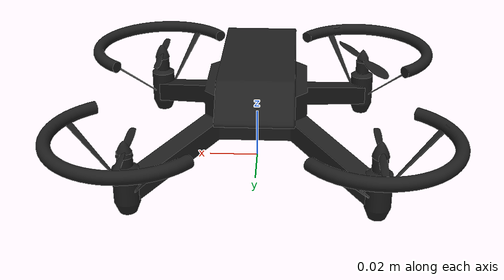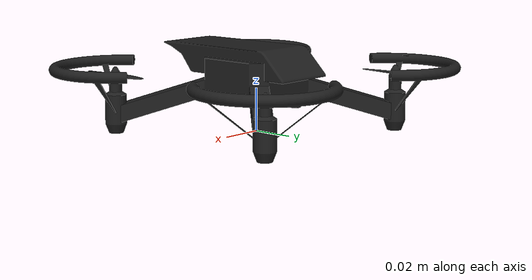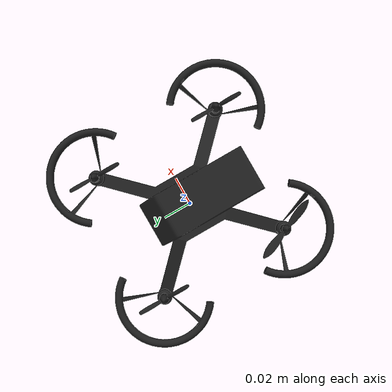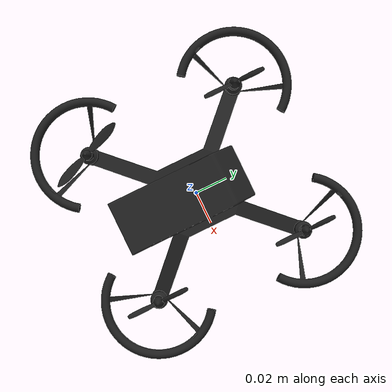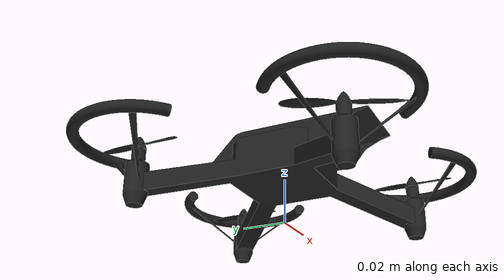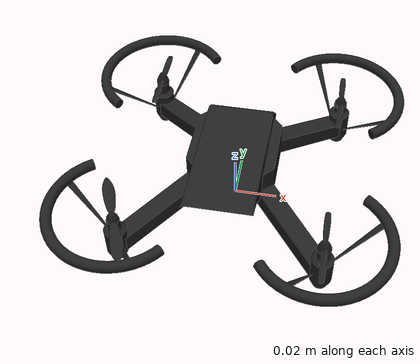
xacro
<?xml version="1.0"?>
<robot xmlns:xacro="http://www.ros.org/wiki/xacro" name="Kwad">
	<xacro:property name="width" value="0.0315" />
	<xacro:property name="length" value="0.45" />
	<xacro:property name="height" value="0.01" />
	<xacro:property name="mass_fr" value="0.5" />
	<xacro:property name="mass_pr" value="0.00055" />
	<xacro:property name="pi_value" value="3.14159263" />
	<xacro:property name="radiusp" value="0.20" />
	<xacro:property name="prop_loc" value="0.15909" />
    <xacro:include filename="$(find lqr)/urdf/material.xacro" />
	<xacro:include filename="$(find lqr)/urdf/pluto.gazebo" />
	<!-- Define inertial macro -->
	<xacro:macro name="default_inertial" params="mass p ix_value iy_value iz_value" >
		<inertial>
			<origin xyz="0 0 0" rpy="0 0 ${p}" />
			<mass value="${mass}" />
			<inertia ixx="${ix_value}" ixy="0" ixz="0"
					 iyy="${iy_value}" iyz="0" izz="${iz_value}" />
		</inertial>
	</xacro:macro>
    <link name="body">
        <visual>
            <origin xyz="0 0 0" rpy="0 0 0" />
            <geometry>
                <mesh filename="package://lqr/meshes/body.dae" scale="0.01 0.01 0.01" />
            </geometry>

            <material name="black" />
        </visual>

        <collision>
            <origin xyz="0 0 0" rpy="0 0 0" />
            <geometry>
                <box size="0.01 0.01 0.0015" />
            </geometry>
        </collision>
        <xacro:default_inertial mass="${0.054}" p="${0}" ix_value="${5.05125e-7}" iy_value="${5.05125e-7}" iz_value="${9e-7}" />
    </link>
    <link name="cap">
        <visual>
            <origin xyz="0 -0.008 0" rpy="0 0 0" />
            <geometry>
                <mesh filename="package://lqr/meshes/cap.dae" scale="0.0088 0.0088 0.0088" />
            </geometry>

            <material name="black" />
        </visual>

        <collision>
            <origin xyz="0 -0.008 0" rpy="0 0 0" />
            <geometry>
                <box size="0.008 0.0035 0.001" />
            </geometry>
        </collision>
        <xacro:default_inertial mass="${0.01}" p="${0}" ix_value="${1.104e-8}" iy_value="${5.4167e-8}" iz_value="${6.354167e-8}" />
    </link>
    <link name="motor1">
        <visual>
            <origin xyz="0 0 0" rpy="0 0 0" />
            <geometry>
                <mesh filename="package://lqr/meshes/motors.dae" scale="0.01 0.01 0.01" />
            </geometry>

            <material name="black" />
        </visual>

        <collision>
            <origin xyz="0 0 0" rpy="0 0 0" />
            <geometry>
                <box size="0.0007 0.0007 0.0025" />
            </geometry>
        </collision>
        <xacro:default_inertial mass="${0.01}" p="${0}" ix_value="${5.5145e-7}" iy_value="${5.5145e-7}" iz_value="${6.125e-10}" />
    </link>
    <link name="motor2">
        <visual>
            <origin xyz="0 0 0" rpy="0 0 0" />
            <geometry>
                <mesh filename="package://lqr/meshes/motors.dae" scale="0.01 0.01 0.01" />
            </geometry>

            <material name="black" />
        </visual>

        <collision>
            <origin xyz="0 0 0" rpy="0 0 0" />
            <geometry>
                <box size="0.0007 0.0007 0.0025" />
            </geometry>
        </collision>
        <xacro:default_inertial mass="${0.01}" p="${0}" ix_value="${5.5145e-7}" iy_value="${5.5145e-7}" iz_value="${6.125e-10}" />
    </link>
    <link name="motor3">
        <visual>
            <origin xyz="0 0 0" rpy="0 0 0" />
            <geometry>
                <mesh filename="package://lqr/meshes/motors.dae" scale="0.01 0.01 0.01" />
            </geometry>

            <material name="black" />
        </visual>

        <collision>
            <origin xyz="0 0 0" rpy="0 0 0" />
            <geometry>
                <box size="0.0007 0.0007 0.0025" />
            </geometry>
        </collision>
        <xacro:default_inertial mass="${0.01}" p="${0}" ix_value="${5.5145e-7}" iy_value="${5.5145e-7}" iz_value="${6.125e-10}" />
    </link>
    <link name="motor4">
        <visual>
            <origin xyz="0 0 0" rpy="0 0 0" />
            <geometry>
                <mesh filename="package://lqr/meshes/motors.dae" scale="0.01 0.01 0.01" />
            </geometry>

            <material name="black" />
        </visual>

        <collision>
            <origin xyz="0 0 0" rpy="0 0 0" />
            <geometry>
                <box size="0.0007 0.0007 0.0025" />
            </geometry>
        </collision>
        <xacro:default_inertial mass="${0.01}" p="${0}" ix_value="${5.5145e-7}" iy_value="${5.5145e-7}" iz_value="${6.125e-10}" />
    </link>
    <link name="prop1">
        <visual>
            <origin xyz="0 0 0.025" rpy="0 0 0" />
            <geometry>
                <mesh filename="package://lqr/meshes/prop1.dae" scale="0.02 0.02 0.02" />
            </geometry>

            <material name="black" />
        </visual>

        <collision>
            <origin xyz="0 0 0.025" rpy="0 0 0" />
            <geometry>
                <box size="0.00055 0.00008 0.00001" />
            </geometry>
        </collision>
        <xacro:default_inertial mass="${0.05}" p="${0}" ix_value="${2.7e-7}" iy_value="${1.26e-5}" iz_value="${1.285e-5}" />
    </link>
    <link name="prop2">
        <visual>
            <origin xyz="0 0 0.025" rpy="0 0 0" />
            <geometry>
                <mesh filename="package://lqr/meshes/prop.dae" scale="0.02 0.02 0.02" />
            </geometry>

            <material name="black" />
        </visual>

        <collision>
            <origin xyz="0 0 0.025" rpy="0 0 0" />
            <geometry>
                <box size="0.00055 0.00008 0.00001" />
            </geometry>
        </collision>
        <xacro:default_inertial mass="${0.05}" p="${0}" ix_value="${2.7e-7}" iy_value="${1.26e-5}" iz_value="${1.285e-5}" />
    </link>
    <link name="prop3">
        <visual>
            <origin xyz="0 0 0.025" rpy="0 0 0" />
            <geometry>
                <mesh filename="package://lqr/meshes/prop.dae" scale="0.02 0.02 0.02" />
            </geometry>

            <material name="black" />
        </visual>

        <collision>
            <origin xyz="0 0 0.025" rpy="0 0 0" />
            <geometry>
                <box size="0.00055 0.00008 0.00001" />
            </geometry>
        </collision>
        <xacro:default_inertial mass="${0.05}" p="${0}" ix_value="${2.7e-7}" iy_value="${1.26e-5}" iz_value="${1.285e-5}" />
    </link>
    <link name="prop4">
        <visual>
            <origin xyz="0 0 0.023" rpy="0 0 0" />
            <geometry>
                <mesh filename="package://lqr/meshes/prop.dae" scale="0.02 0.02 0.02" />
            </geometry>

            <material name="black" />
        </visual>

        <collision>
            <origin xyz="0 0 0.023" rpy="0 0 0" />
            <geometry>
                <box size="0.0055 0.0008 0.0001" />
            </geometry>
        </collision>
        <xacro:default_inertial mass="${0.05}" p="${0}" ix_value="${2.7e-7}" iy_value="${1.26e-5}" iz_value="${1.285e-5}" />
    </link>
    <link name="guard1">
        <visual>
            <origin xyz="-0.0195 -0.0195 0.03" rpy="0 ${-pi_value/2} ${-pi_value/4}" />
            <geometry>
                <mesh filename="package://lqr/meshes/guard.stl" scale="0.03 0.03 0.03" />
            </geometry>

            <material name="black" />
        </visual>

        <collision>
            <origin xyz="-0.0195 -0.0195 0.03" rpy="0 ${-pi_value/2} ${-pi_value/4}" />
            <geometry>
                <box size="0.0035 0.0035 0.0003" />
            </geometry>
        </collision>
        <xacro:default_inertial mass="${0.001}" p="${0}" ix_value="${0}" iy_value="${0}" iz_value="${9.1875e-7}" />
    </link>
    <link name="guard2">
        <visual>
            <origin xyz="-0.0195 0.0195 0.03" rpy="0 ${-pi_value/2} ${-3*pi_value/4}" />
            <geometry>
                <mesh filename="package://lqr/meshes/guard.stl" scale="0.03 0.03 0.03" />
            </geometry>

            <material name="black" />
        </visual>

        <collision>
            <origin xyz="-0.0195 0.0195 0.03" rpy="0 ${-pi_value/2} ${-3*pi_value/4}" />
            <geometry>
                <box size="0.0035 0.0035 0.0003" />
            </geometry>
        </collision>
        <xacro:default_inertial mass="${0.001}" p="${0}" ix_value="${0}" iy_value="${0}" iz_value="${9.1875e-7}" />
    </link>
    <link name="guard3">
        <visual>
            <origin xyz="0.0195 -0.0195 0.03" rpy="0 ${-pi_value/2} ${pi_value/4}" />
            <geometry>
                <mesh filename="package://lqr/meshes/guard.stl" scale="0.03 0.03 0.03" />
            </geometry>

            <material name="black" />
        </visual>

        <collision>
            <origin xyz="0.0195 -0.0195 0.03" rpy="0 ${-pi_value/2} ${pi_value/4}" />
            <geometry>
                <box size="0.0035 0.0035 0.0003" />
            </geometry>
        </collision>
        <xacro:default_inertial mass="${0.001}" p="${0}" ix_value="${0}" iy_value="${0}" iz_value="${9.1875e-7}" />
    </link>
    <link name="guard4">
        <visual>
            <origin xyz="0.0195 0.0195 0.03" rpy="0 ${-pi_value/2} ${3*pi_value/4}" />
            <geometry>
                <mesh filename="package://lqr/meshes/guard.stl" scale="0.03 0.03 0.03" />
            </geometry>

            <material name="black" />
        </visual>

        <collision>
            <origin xyz="0.0195 0.0195 0.03" rpy="0 ${-pi_value/2} ${3*pi_value/4}" />
            <geometry>
                <box size="0.0035 0.0035 0.0003" />
            </geometry>
        </collision>
        <xacro:default_inertial mass="${0.001}" p="${0}" ix_value="${0}" iy_value="${0}" iz_value="${9.1875e-7}" />
    </link>
    <link name="imu_link">
        <visual>
            <origin xyz="0 0 0" rpy="0 0 0" />
            <geometry>
                <box size="0.001 0.001 0.001" />
            </geometry>

            <material name="red" />
        </visual>

        <collision>
            <origin xyz="0 0 0" rpy="0 0 0" />
            <geometry>
                <box size="0.01 0.01 0.01" />
            </geometry>
        </collision>
        <xacro:default_inertial mass="${1e-3}" p="${0}" ix_value="${1e-4}" iy_value="${1e-4}" iz_value="${1e-4}" />
    </link>
    <joint name="joint_body_cap" type="fixed">
        <parent link="body" />
        <child link="cap" />
        <origin xyz="0 0 0.027" rpy="0 0 0" />
        <axis xyz="0 0 1" />
    </joint>
    <joint name="joint_body_motor1" type="fixed">
        <parent link="body" />
        <child link="motor1" />
        <origin xyz="-0.046 -0.046 0" rpy="0 0 0" />
        <axis xyz="0 0 1" />
    </joint>
    <joint name="joint_body_motor2" type="fixed">
        <parent link="body" />
        <child link="motor2" />
        <origin xyz="-0.046 0.046 0" rpy="0 0 0" />
        <axis xyz="0 0 1" />
    </joint>
    <joint name="joint_body_motor3" type="fixed">
        <parent link="body" />
        <child link="motor3" />
        <origin xyz="0.046 -0.046 0" rpy="0 0 0" />
        <axis xyz="0 0 1" />
    </joint>
    <joint name="joint_body_motor4" type="fixed">
        <parent link="body" />
        <child link="motor4" />
        <origin xyz="0.046 0.046 0" rpy="0 0 0" />
        <axis xyz="0 0 1" />
    </joint>
    <joint name="joint_body_prop1" type="continuous">
        <parent link="body" />
        <child link="prop1" />
        <origin xyz="-0.046 -0.046 0" rpy="0 0 0" />
        <axis xyz="0 0 1" />
        <dynamics damping="1"/>
    </joint>
    <joint name="joint_body_prop2" type="continuous">
        <parent link="body" />
        <child link="prop2" />
        <origin xyz="-0.046 0.046 0" rpy="0 0 0" />
        <axis xyz="0 0 1" />
        <dynamics damping="1"/>
    </joint>
    <joint name="joint_body_prop3" type="continuous">
        <parent link="body" />
        <child link="prop3" />
        <origin xyz="0.046 -0.046 0" rpy="0 0 0" />
        <axis xyz="0 0 1" />
        <dynamics damping="1"/>
    </joint>
    <joint name="joint_body_prop4" type="continuous">
        <parent link="body" />
        <child link="prop4" />
        <origin xyz="0.046 0.046 0" rpy="0 0 0" />
        <axis xyz="0 0 1" />
        <dynamics damping="1"/>
    </joint>
    <joint name="joint_motor_prop1_guard" type="fixed">
        <parent link="motor1" />
        <child link="guard1" />
        <origin xyz="0 0 0" rpy="0 0 0" />
        <axis xyz="0 0 1" />
    </joint>
    <joint name="joint_motor_prop2_guard" type="fixed">
        <parent link="motor2" />
        <child link="guard2" />
        <origin xyz="0 0 0" rpy="0 0 0" />
        <axis xyz="0 0 1" />
    </joint>
    <joint name="joint_motor_prop3_guard" type="fixed">
        <parent link="motor3" />
        <child link="guard3" />
        <origin xyz="0 0 0" rpy="0 0 0" />
        <axis xyz="0 0 1" />
    </joint>
    <joint name="joint_motor_prop4_guard" type="fixed">
        <parent link="motor4" />
        <child link="guard4" />
        <origin xyz="0 0 0" rpy="0 0 0" />
        <axis xyz="0 0 1" />
    </joint>
    <joint name="joint_body_imu" type="fixed">
        <parent link="body" />
        <child link="imu_link" />
        <origin xyz="0 0 0.02" rpy="0 0 0" />
        <axis xyz="0 0 1" />
    </joint>
   <transmission name="front_right_motor_joint" >
		<type>transmission_interface/SimpleTransmission</type>
		<joint name="joint_body_prop1">
			<hardwareInterface>hardware_interface/VelocityJointInterface</hardwareInterface>
		</joint>
		<actuator name="BLDC_motor1">
			<hardwareInterface>hardware_interface/VelocityJointInterface</hardwareInterface>
			<mechanicalReduction>1</mechanicalReduction>
		</actuator>
	</transmission>

	<transmission name="front_left_motor_joint" >
		<type>transmission_interface/SimpleTransmission</type>
		<joint name="joint_body_prop2">
			<hardwareInterface>hardware_interface/VelocityJointInterface</hardwareInterface>
		</joint>
		<actuator name="BLDC_motor2">
			<hardwareInterface>hardware_interface/VelocityJointInterface</hardwareInterface>
			<mechanicalReduction>1</mechanicalReduction>
		</actuator>
	</transmission>

	<transmission name="back_right_motor_joint" >
		<type>transmission_interface/SimpleTransmission</type>
		<joint name="joint_body_prop3">
			<hardwareInterface>hardware_interface/VelocityJointInterface</hardwareInterface>
		</joint>
		<actuator name="BLDC_motor3">
			<hardwareInterface>hardware_interface/VelocityJointInterface</hardwareInterface>
			<mechanicalReduction>1</mechanicalReduction>
		</actuator>
	</transmission>

	<transmission name="back_left_motor_joint" >
		<type>transmission_interface/SimpleTransmission</type>
		<joint name="joint_body_prop4">
			<hardwareInterface>hardware_interface/VelocityJointInterface</hardwareInterface>
		</joint>
		<actuator name="BLDC_motor4">
			<hardwareInterface>hardware_interface/VelocityJointInterface</hardwareInterface>
			<mechanicalReduction>1</mechanicalReduction>
		</actuator>
	</transmission>
</robot>
